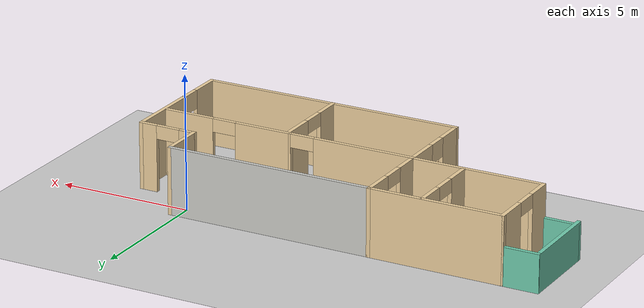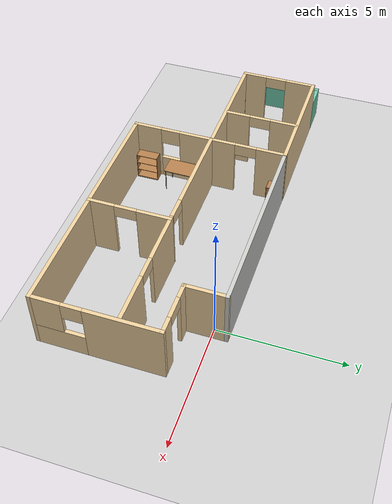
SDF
<sdf version="1.6">
 <world name="default">
  <model name="ground_plane">
   <static>1</static>
   <link name="link">
    <collision name="collision">
     <geometry><plane><normal>0 0 1</normal><size>100 100</size></plane></geometry>
     <surface>
      <contact><collide_bitmask>65535</collide_bitmask></contact>
      <friction><ode><mu>100</mu><mu2>50</mu2></ode></friction>
     </surface>
    </collision>
    <visual name="visual">
     <cast_shadows>0</cast_shadows>
     <geometry><plane><normal>0 0 1</normal><size>100 100</size></plane></geometry>
     <material>
      <script><uri>file://media/materials/scripts/gazebo.material</uri><name>Gazebo/Grey</name></script>
     </material>
    </visual>
   </link>
  </model>
  <model name="myhouse">
   <pose>-5.65027 -2.655 0 0 -0 0</pose>
   <link name="Wall_0">
    <pose>7.00027 1.625 0 0 -0 0</pose>
    <visual name="Wall_0_Visual_0">
     <pose>-0.804089 0 1.25 0 -0 0</pose>
     <geometry><box><size>0.641821 0.15 2.5</size></box></geometry>
     <material>
      <script><uri>file://media/materials/scripts/gazebo.material</uri><name>Gazebo/Grey</name></script>
      <ambient>0.921569 0.807843 0.615686 1</ambient>
     </material>
     <meta><layer>0</layer></meta>
    </visual>
    <collision name="Wall_0_Collision_0">
     <geometry><box><size>0.641821 0.15 2.5</size></box></geometry>
     <pose>-0.804089 0 1.25 0 -0 0</pose>
    </collision>
    <visual name="Wall_0_Visual_1">
     <pose>0.770911 0 1.25 0 -0 0</pose>
     <geometry><box><size>0.708179 0.15 2.5</size></box></geometry>
     <material>
      <script><uri>file://media/materials/scripts/gazebo.material</uri><name>Gazebo/Grey</name></script>
      <ambient>0.921569 0.807843 0.615686 1</ambient>
     </material>
     <meta><layer>0</layer></meta>
    </visual>
    <collision name="Wall_0_Collision_1">
     <geometry><box><size>0.708179 0.15 2.5</size></box></geometry>
     <pose>0.770911 0 1.25 0 -0 0</pose>
    </collision>
    <visual name="Wall_0_Visual_2">
     <pose>-0.033179 0 2.25 0 -0 0</pose>
     <geometry><box><size>0.9 0.15 0.5</size></box></geometry>
     <material>
      <script><uri>file://media/materials/scripts/gazebo.material</uri><name>Gazebo/Grey</name></script>
      <ambient>0.921569 0.807843 0.615686 1</ambient>
     </material>
     <meta><layer>0</layer></meta>
    </visual>
    <collision name="Wall_0_Collision_2">
     <geometry><box><size>0.9 0.15 0.5</size></box></geometry>
     <pose>-0.033179 0 2.25 0 -0 0</pose>
    </collision>
   </link>
   <link name="Wall_11">
    <pose>5.50113 0.078954 0 0 -0 3.14159</pose>
    <visual name="Wall_11_Visual_0">
     <pose>-1.5197 0 1.25 0 -0 0</pose>
     <geometry><box><size>1.9606 0.15 2.5</size></box></geometry>
     <material>
      <script><uri>file://media/materials/scripts/gazebo.material</uri><name>Gazebo/Grey</name></script>
      <ambient>0.921569 0.807843 0.615686 1</ambient>
     </material>
     <meta><layer>0</layer></meta>
    </visual>
    <collision name="Wall_11_Collision_0">
     <geometry><box><size>1.9606 0.15 2.5</size></box></geometry>
     <pose>-1.5197 0 1.25 0 -0 0</pose>
    </collision>
    <visual name="Wall_11_Visual_1">
     <pose>1.4303 0 1.25 0 -0 0</pose>
     <geometry><box><size>2.13941 0.15 2.5</size></box></geometry>
     <material>
      <script><uri>file://media/materials/scripts/gazebo.material</uri><name>Gazebo/Grey</name></script>
      <ambient>0.921569 0.807843 0.615686 1</ambient>
     </material>
     <meta><layer>0</layer></meta>
    </visual>
    <collision name="Wall_11_Collision_1">
     <geometry><box><size>2.13941 0.15 2.5</size></box></geometry>
     <pose>1.4303 0 1.25 0 -0 0</pose>
    </collision>
    <visual name="Wall_11_Visual_2">
     <pose>-0.089405 0 2.25 0 -0 0</pose>
     <geometry><box><size>0.9 0.15 0.5</size></box></geometry>
     <material>
      <script><uri>file://media/materials/scripts/gazebo.material</uri><name>Gazebo/Grey</name></script>
      <ambient>0.921569 0.807843 0.615686 1</ambient>
     </material>
     <meta><layer>0</layer></meta>
    </visual>
    <collision name="Wall_11_Collision_2">
     <geometry><box><size>0.9 0.15 0.5</size></box></geometry>
     <pose>-0.089405 0 2.25 0 -0 0</pose>
    </collision>
   </link>
   <link name="Wall_12">
    <pose>3.07613 -1.57105 0 0 -0 -1.5708</pose>
    <visual name="Wall_12_Visual_0">
     <pose>-1.01083 0 1.25 0 -0 0</pose>
     <geometry><box><size>1.42834 0.15 2.5</size></box></geometry>
     <material>
      <script><uri>file://media/materials/scripts/gazebo.material</uri><name>Gazebo/Grey</name></script>
      <ambient>0.921569 0.807843 0.615686 1</ambient>
     </material>
     <meta><layer>0</layer></meta>
    </visual>
    <collision name="Wall_12_Collision_0">
     <geometry><box><size>1.42834 0.15 2.5</size></box></geometry>
     <pose>-1.01083 0 1.25 0 -0 0</pose>
    </collision>
    <visual name="Wall_12_Visual_1">
     <pose>1.16417 0 1.25 0 -0 0</pose>
     <geometry><box><size>1.12166 0.15 2.5</size></box></geometry>
     <material>
      <script><uri>file://media/materials/scripts/gazebo.material</uri><name>Gazebo/Grey</name></script>
      <ambient>0.921569 0.807843 0.615686 1</ambient>
     </material>
     <meta><layer>0</layer></meta>
    </visual>
    <collision name="Wall_12_Collision_1">
     <geometry><box><size>1.12166 0.15 2.5</size></box></geometry>
     <pose>1.16417 0 1.25 0 -0 0</pose>
    </collision>
    <visual name="Wall_12_Visual_2">
     <pose>0.153338 0 2.25 0 -0 0</pose>
     <geometry><box><size>0.9 0.15 0.5</size></box></geometry>
     <material>
      <script><uri>file://media/materials/scripts/gazebo.material</uri><name>Gazebo/Grey</name></script>
      <ambient>0.921569 0.807843 0.615686 1</ambient>
     </material>
     <meta><layer>0</layer></meta>
    </visual>
    <collision name="Wall_12_Collision_2">
     <geometry><box><size>0.9 0.15 0.5</size></box></geometry>
     <pose>0.153338 0 2.25 0 -0 0</pose>
    </collision>
   </link>
   <link name="Wall_17">
    <pose>0.651128 0.078954 0 0 -0 3.14159</pose>
    <visual name="Wall_17_Visual_0">
     <pose>-2.3846 0 1.25 0 -0 0</pose>
     <geometry><box><size>0.230798 0.15 2.5</size></box></geometry>
     <material>
      <script><uri>file://media/materials/scripts/gazebo.material</uri><name>Gazebo/Grey</name></script>
      <ambient>0.921569 0.807843 0.615686 1</ambient>
     </material>
     <meta><layer>0</layer></meta>
    </visual>
    <collision name="Wall_17_Collision_0">
     <geometry><box><size>0.230798 0.15 2.5</size></box></geometry>
     <pose>-2.3846 0 1.25 0 -0 0</pose>
    </collision>
    <visual name="Wall_17_Visual_1">
     <pose>0.565399 0 1.25 0 -0 0</pose>
     <geometry><box><size>3.8692 0.15 2.5</size></box></geometry>
     <material>
      <script><uri>file://media/materials/scripts/gazebo.material</uri><name>Gazebo/Grey</name></script>
      <ambient>0.921569 0.807843 0.615686 1</ambient>
     </material>
     <meta><layer>0</layer></meta>
    </visual>
    <collision name="Wall_17_Collision_1">
     <geometry><box><size>3.8692 0.15 2.5</size></box></geometry>
     <pose>0.565399 0 1.25 0 -0 0</pose>
    </collision>
    <visual name="Wall_17_Visual_2">
     <pose>-1.8192 0 2.25 0 -0 0</pose>
     <geometry><box><size>0.9 0.15 0.5</size></box></geometry>
     <material>
      <script><uri>file://media/materials/scripts/gazebo.material</uri><name>Gazebo/Grey</name></script>
      <ambient>0.921569 0.807843 0.615686 1</ambient>
     </material>
     <meta><layer>0</layer></meta>
    </visual>
    <collision name="Wall_17_Collision_2">
     <geometry><box><size>0.9 0.15 0.5</size></box></geometry>
     <pose>-1.8192 0 2.25 0 -0 0</pose>
    </collision>
   </link>
   <link name="Wall_20">
    <pose>-1.79973 -1.5595 0 0 -0 1.5708</pose>
    <visual name="Wall_20_Visual_0">
     <pose>-1.13454 0 1.25 0 -0 0</pose>
     <geometry><box><size>1.21192 0.15 2.5</size></box></geometry>
     <material>
      <script><uri>file://media/materials/scripts/gazebo.material</uri><name>Gazebo/Grey</name></script>
      <ambient>0.921569 0.807843 0.615686 1</ambient>
     </material>
     <meta><layer>0</layer></meta>
    </visual>
    <collision name="Wall_20_Collision_0">
     <geometry><box><size>1.21192 0.15 2.5</size></box></geometry>
     <pose>-1.13454 0 1.25 0 -0 0</pose>
    </collision>
    <visual name="Wall_20_Visual_1">
     <pose>0.605958 0 0.5 0 -0 0</pose>
     <geometry><box><size>2.26908 0.15 1</size></box></geometry>
     <material>
      <script><uri>file://media/materials/scripts/gazebo.material</uri><name>Gazebo/Grey</name></script>
      <ambient>0.921569 0.807843 0.615686 1</ambient>
     </material>
     <meta><layer>0</layer></meta>
    </visual>
    <collision name="Wall_20_Collision_1">
     <geometry><box><size>2.26908 0.15 1</size></box></geometry>
     <pose>0.605958 0 0.5 0 -0 0</pose>
    </collision>
    <visual name="Wall_20_Visual_2">
     <pose>1.00596 0 1.75 0 -0 0</pose>
     <geometry><box><size>1.46908 0.15 1.5</size></box></geometry>
     <material>
      <script><uri>file://media/materials/scripts/gazebo.material</uri><name>Gazebo/Grey</name></script>
      <ambient>0.921569 0.807843 0.615686 1</ambient>
     </material>
     <meta><layer>0</layer></meta>
    </visual>
    <collision name="Wall_20_Collision_2">
     <geometry><box><size>1.46908 0.15 1.5</size></box></geometry>
     <pose>1.00596 0 1.75 0 -0 0</pose>
    </collision>
    <visual name="Wall_20_Visual_3">
     <pose>-0.128584 0 2.15 0 -0 0</pose>
     <geometry><box><size>0.8 0.15 0.7</size></box></geometry>
     <material>
      <script><uri>file://media/materials/scripts/gazebo.material</uri><name>Gazebo/Grey</name></script>
      <ambient>0.921569 0.807843 0.615686 1</ambient>
     </material>
     <meta><layer>0</layer></meta>
    </visual>
    <collision name="Wall_20_Collision_3">
     <geometry><box><size>0.8 0.15 0.7</size></box></geometry>
     <pose>-0.128584 0 2.15 0 -0 0</pose>
    </collision>
   </link>
   <link name="Wall_29">
    <collision name="Wall_29_Collision">
     <geometry><box><size>1.74 0.15 2.5</size></box></geometry>
     <pose>0 0 1.25 0 -0 0</pose>
    </collision>
    <visual name="Wall_29_Visual">
     <pose>0 0 1.25 0 -0 0</pose>
     <geometry><box><size>1.74 0.15 2.5</size></box></geometry>
     <material>
      <script><uri>file://media/materials/scripts/gazebo.material</uri><name>Gazebo/Grey</name></script>
      <ambient>0.921569 0.807843 0.615686 1</ambient>
     </material>
     <meta><layer>0</layer></meta>
    </visual>
    <pose>5.95027 2.42 0 0 -0 1.5708</pose>
   </link>
   <link name="Wall_30">
    <collision name="Wall_30_Collision">
     <geometry><box><size>7.75 0.15 2.5</size></box></geometry>
     <pose>0 0 1.25 0 -0 0</pose>
    </collision>
    <visual name="Wall_30_Visual">
     <pose>0 0 1.25 0 -0 0</pose>
     <geometry><box><size>7.75 0.15 2.5</size></box></geometry>
     <material>
      <script><uri>file://media/materials/scripts/gazebo.material</uri><name>Gazebo/CeilingTiled</name></script>
      <ambient>0.921569 0.807843 0.615686 1</ambient>
     </material>
     <meta><layer>0</layer></meta>
    </visual>
    <pose>2.15027 3.215 0 0 -0 3.14159</pose>
   </link>
   <link name="Wall_32">
    <pose>-1.79973 1.6655 0 0 -0 1.5708</pose>
    <visual name="Wall_32_Visual_0">
     <pose>-1.09237 0 1.25 0 -0 0</pose>
     <geometry><box><size>1.08427 0.15 2.5</size></box></geometry>
     <material>
      <script><uri>file://media/materials/scripts/gazebo.material</uri><name>Gazebo/Grey</name></script>
      <ambient>0.921569 0.807843 0.615686 1</ambient>
     </material>
     <meta><layer>0</layer></meta>
    </visual>
    <collision name="Wall_32_Collision_0">
     <geometry><box><size>1.08427 0.15 2.5</size></box></geometry>
     <pose>-1.09237 0 1.25 0 -0 0</pose>
    </collision>
    <visual name="Wall_32_Visual_1">
     <pose>0.992134 0 1.25 0 -0 0</pose>
     <geometry><box><size>1.28473 0.15 2.5</size></box></geometry>
     <material>
      <script><uri>file://media/materials/scripts/gazebo.material</uri><name>Gazebo/Grey</name></script>
      <ambient>0.921569 0.807843 0.615686 1</ambient>
     </material>
     <meta><layer>0</layer></meta>
    </visual>
    <collision name="Wall_32_Collision_1">
     <geometry><box><size>1.28473 0.15 2.5</size></box></geometry>
     <pose>0.992134 0 1.25 0 -0 0</pose>
    </collision>
    <visual name="Wall_32_Visual_2">
     <pose>-0.100233 0 2.25 0 -0 0</pose>
     <geometry><box><size>0.9 0.15 0.5</size></box></geometry>
     <material>
      <script><uri>file://media/materials/scripts/gazebo.material</uri><name>Gazebo/Grey</name></script>
      <ambient>0.921569 0.807843 0.615686 1</ambient>
     </material>
     <meta><layer>0</layer></meta>
    </visual>
    <collision name="Wall_32_Collision_2">
     <geometry><box><size>0.9 0.15 0.5</size></box></geometry>
     <pose>-0.100233 0 2.25 0 -0 0</pose>
    </collision>
   </link>
   <link name="Wall_37">
    <collision name="Wall_37_Collision">
     <geometry><box><size>5.1 0.15 2.5</size></box></geometry>
     <pose>0 0 1.25 0 -0 0</pose>
    </collision>
    <visual name="Wall_37_Visual">
     <pose>0 0 1.25 0 -0 0</pose>
     <geometry><box><size>5.1 0.15 2.5</size></box></geometry>
     <material>
      <script><uri>file://media/materials/scripts/gazebo.material</uri><name>Gazebo/Grey</name></script>
      <ambient>0.921569 0.807843 0.615686 1</ambient>
     </material>
     <meta><layer>0</layer></meta>
    </visual>
    <pose>-4.27473 3.225 0 0 -0 3.14159</pose>
   </link>
   <link name="Wall_51">
    <pose>-3.76973 1.695 0 0 -0 -1.5708</pose>
    <visual name="Wall_51_Visual_0">
     <pose>-0.966083 0 1.25 0 -0 0</pose>
     <geometry><box><size>1.16783 0.15 2.5</size></box></geometry>
     <material>
      <script><uri>file://media/materials/scripts/gazebo.material</uri><name>Gazebo/Grey</name></script>
      <ambient>0.921569 0.807843 0.615686 1</ambient>
     </material>
     <meta><layer>0</layer></meta>
    </visual>
    <collision name="Wall_51_Collision_0">
     <geometry><box><size>1.16783 0.15 2.5</size></box></geometry>
     <pose>-0.966083 0 1.25 0 -0 0</pose>
    </collision>
    <visual name="Wall_51_Visual_1">
     <pose>1.03392 0 1.25 0 -0 0</pose>
     <geometry><box><size>1.03217 0.15 2.5</size></box></geometry>
     <material>
      <script><uri>file://media/materials/scripts/gazebo.material</uri><name>Gazebo/Grey</name></script>
      <ambient>0.921569 0.807843 0.615686 1</ambient>
     </material>
     <meta><layer>0</layer></meta>
    </visual>
    <collision name="Wall_51_Collision_1">
     <geometry><box><size>1.03217 0.15 2.5</size></box></geometry>
     <pose>1.03392 0 1.25 0 -0 0</pose>
    </collision>
    <visual name="Wall_51_Visual_2">
     <pose>0.067833 0 2.25 0 -0 0</pose>
     <geometry><box><size>0.9 0.15 0.5</size></box></geometry>
     <material>
      <script><uri>file://media/materials/scripts/gazebo.material</uri><name>Gazebo/Grey</name></script>
      <ambient>0.921569 0.807843 0.615686 1</ambient>
     </material>
     <meta><layer>0</layer></meta>
    </visual>
    <collision name="Wall_51_Collision_2">
     <geometry><box><size>0.9 0.15 0.5</size></box></geometry>
     <pose>0.067833 0 2.25 0 -0 0</pose>
    </collision>
   </link>
   <link name="Wall_55">
    <pose>-6.73773 1.6725 0 0 -0 -1.5708</pose>
    <visual name="Wall_55_Visual_0">
     <pose>-0.974197 0 1.25 0 -0 0</pose>
     <geometry><box><size>1.30661 0.15 2.5</size></box></geometry>
     <material>
      <script><uri>file://media/materials/scripts/gazebo.material</uri><name>Gazebo/Grey</name></script>
      <ambient>0.921569 0.807843 0.615686 1</ambient>
     </material>
     <meta><layer>0</layer></meta>
    </visual>
    <collision name="Wall_55_Collision_0">
     <geometry><box><size>1.30661 0.15 2.5</size></box></geometry>
     <pose>-0.974197 0 1.25 0 -0 0</pose>
    </collision>
    <visual name="Wall_55_Visual_1">
     <pose>1.1033 0 1.25 0 -0 0</pose>
     <geometry><box><size>1.04839 0.15 2.5</size></box></geometry>
     <material>
      <script><uri>file://media/materials/scripts/gazebo.material</uri><name>Gazebo/Grey</name></script>
      <ambient>0.921569 0.807843 0.615686 1</ambient>
     </material>
     <meta><layer>0</layer></meta>
    </visual>
    <collision name="Wall_55_Collision_1">
     <geometry><box><size>1.04839 0.15 2.5</size></box></geometry>
     <pose>1.1033 0 1.25 0 -0 0</pose>
    </collision>
    <visual name="Wall_55_Visual_2">
     <pose>0.129106 0 2.25 0 -0 0</pose>
     <geometry><box><size>0.9 0.15 0.5</size></box></geometry>
     <material>
      <script><uri>file://media/materials/scripts/gazebo.material</uri><name>Gazebo/Grey</name></script>
      <ambient>0.921569 0.807843 0.615686 1</ambient>
     </material>
     <meta><layer>0</layer></meta>
    </visual>
    <collision name="Wall_55_Collision_2">
     <geometry><box><size>0.9 0.15 0.5</size></box></geometry>
     <pose>0.129106 0 2.25 0 -0 0</pose>
    </collision>
   </link>
   <link name="Wall_6">
    <pose>8.05027 -0.8 0 0 -0 -1.5708</pose>
    <visual name="Wall_6_Visual_0">
     <pose>-1.02355 0 1.25 0 -0 0</pose>
     <geometry><box><size>2.95291 0.15 2.5</size></box></geometry>
     <material>
      <script><uri>file://media/materials/scripts/gazebo.material</uri><name>Gazebo/Grey</name></script>
      <ambient>0.921569 0.807843 0.615686 1</ambient>
     </material>
     <meta><layer>0</layer></meta>
    </visual>
    <collision name="Wall_6_Collision_0">
     <geometry><box><size>2.95291 0.15 2.5</size></box></geometry>
     <pose>-1.02355 0 1.25 0 -0 0</pose>
    </collision>
    <visual name="Wall_6_Visual_1">
     <pose>1.47645 0 0.5 0 -0 0</pose>
     <geometry><box><size>2.04709 0.15 1</size></box></geometry>
     <material>
      <script><uri>file://media/materials/scripts/gazebo.material</uri><name>Gazebo/Grey</name></script>
      <ambient>0.921569 0.807843 0.615686 1</ambient>
     </material>
     <meta><layer>0</layer></meta>
    </visual>
    <collision name="Wall_6_Collision_1">
     <geometry><box><size>2.04709 0.15 1</size></box></geometry>
     <pose>1.47645 0 0.5 0 -0 0</pose>
    </collision>
    <visual name="Wall_6_Visual_2">
     <pose>1.87645 0 1.75 0 -0 0</pose>
     <geometry><box><size>1.24709 0.15 1.5</size></box></geometry>
     <material>
      <script><uri>file://media/materials/scripts/gazebo.material</uri><name>Gazebo/Grey</name></script>
      <ambient>0.921569 0.807843 0.615686 1</ambient>
     </material>
     <meta><layer>0</layer></meta>
    </visual>
    <collision name="Wall_6_Collision_2">
     <geometry><box><size>1.24709 0.15 1.5</size></box></geometry>
     <pose>1.87645 0 1.75 0 -0 0</pose>
    </collision>
    <visual name="Wall_6_Visual_3">
     <pose>0.852906 0 2.15 0 -0 0</pose>
     <geometry><box><size>0.8 0.15 0.7</size></box></geometry>
     <material>
      <script><uri>file://media/materials/scripts/gazebo.material</uri><name>Gazebo/Grey</name></script>
      <ambient>0.921569 0.807843 0.615686 1</ambient>
     </material>
     <meta><layer>0</layer></meta>
    </visual>
    <collision name="Wall_6_Collision_3">
     <geometry><box><size>0.8 0.15 0.7</size></box></geometry>
     <pose>0.852906 0 2.15 0 -0 0</pose>
    </collision>
   </link>
   <link name="Wall_66">
    <collision name="Wall_66_Collision">
     <geometry><box><size>5.07 0.15 2.5</size></box></geometry>
     <pose>0 0 1.25 0 -0 0</pose>
    </collision>
    <visual name="Wall_66_Visual">
     <pose>0 0 1.25 0 -0 0</pose>
     <geometry><box><size>5.07 0.15 2.5</size></box></geometry>
     <material>
      <script><uri>file://media/materials/scripts/gazebo.material</uri><name>Gazebo/Grey</name></script>
      <ambient>0.921569 0.807843 0.615686 1</ambient>
     </material>
     <meta><layer>0</layer></meta>
    </visual>
    <pose>-4.25973 0.106 0 0 -0 3.14159</pose>
   </link>
   <link name="Wall_69">
    <collision name="Wall_69_Collision">
     <geometry><box><size>1.48098 0.15 1.3</size></box></geometry>
     <pose>0 0 0.65 0 -0 0</pose>
    </collision>
    <visual name="Wall_69_Visual">
     <pose>0 0 0.65 0 -0 0</pose>
     <geometry><box><size>1.48098 0.15 1.3</size></box></geometry>
     <material>
      <script><uri>file://media/materials/scripts/gazebo.material</uri><name>Gazebo/Grey</name></script>
      <ambient>0.435294 0.796078 0.67451 1</ambient>
     </material>
     <meta><layer>0</layer></meta>
    </visual>
    <pose>-7.38473 0.1055 0 0 -0 -3.14084</pose>
   </link>
   <link name="Wall_70">
    <collision name="Wall_70_Collision">
     <geometry><box><size>3.25 0.15 1.4</size></box></geometry>
     <pose>0 0 0.7 0 -0 0</pose>
    </collision>
    <visual name="Wall_70_Visual">
     <pose>0 0 0.7 0 -0 0</pose>
     <geometry><box><size>3.25 0.15 1.4</size></box></geometry>
     <material>
      <script><uri>file://media/materials/scripts/gazebo.material</uri><name>Gazebo/Grey</name></script>
      <ambient>0.435294 0.796078 0.67451 1</ambient>
     </material>
     <meta><layer>0</layer></meta>
    </visual>
    <pose>-8.04973 1.655 0 0 -0 1.5708</pose>
   </link>
   <link name="Wall_74">
    <collision name="Wall_74_Collision">
     <geometry><box><size>1.46 0.15 1.4</size></box></geometry>
     <pose>0 0 0.7 0 -0 0</pose>
    </collision>
    <visual name="Wall_74_Visual">
     <pose>0 0 0.7 0 -0 0</pose>
     <geometry><box><size>1.46 0.15 1.4</size></box></geometry>
     <material>
      <script><uri>file://media/materials/scripts/gazebo.material</uri><name>Gazebo/Grey</name></script>
      <ambient>0.435294 0.796078 0.67451 1</ambient>
     </material>
     <meta><layer>0</layer></meta>
    </visual>
    <pose>-7.39273 3.225 0 0 -0 3.14159</pose>
   </link>
   <link name="Wall_9">
    <collision name="Wall_9_Collision">
     <geometry><box><size>10 0.15 2.5</size></box></geometry>
     <pose>0 0 1.25 0 -0 0</pose>
    </collision>
    <visual name="Wall_9_Visual">
     <pose>0 0 1.25 0 -0 0</pose>
     <geometry><box><size>10 0.15 2.5</size></box></geometry>
     <material>
      <script><uri>file://media/materials/scripts/gazebo.material</uri><name>Gazebo/Grey</name></script>
      <ambient>0.921569 0.807843 0.615686 1</ambient>
     </material>
     <meta><layer>0</layer></meta>
    </visual>
    <pose>3.12527 -3.225 0 0 -0 3.14159</pose>
   </link>
   <static>1</static>
  </model>
  <model name="bookshelf_clone">
   <static>1</static>
   <link name="link">
    <inertial><mass>1</mass></inertial>
    <collision name="back">
     <pose>0 0.005 0.6 0 -0 0</pose>
     <geometry><box><size>0.9 0.01 1.2</size></box></geometry>
    </collision>
    <visual name="visual1">
     <pose>0 0.005 0.6 0 -0 0</pose>
     <geometry><box><size>0.9 0.01 1.2</size></box></geometry>
     <material>
      <script><uri>file://media/materials/scripts/gazebo.material</uri><name>Gazebo/Wood</name></script>
     </material>
    </visual>
    <collision name="left_side">
     <pose>0.45 -0.195 0.6 0 -0 0</pose>
     <geometry><box><size>0.02 0.4 1.2</size></box></geometry>
    </collision>
    <visual name="visual2">
     <pose>0.45 -0.195 0.6 0 -0 0</pose>
     <geometry><box><size>0.02 0.4 1.2</size></box></geometry>
     <material>
      <script><uri>file://media/materials/scripts/gazebo.material</uri><name>Gazebo/Wood</name></script>
     </material>
    </visual>
    <collision name="right_side">
     <pose>-0.45 -0.195 0.6 0 -0 0</pose>
     <geometry><box><size>0.02 0.4 1.2</size></box></geometry>
    </collision>
    <visual name="visual3">
     <pose>-0.45 -0.195 0.6 0 -0 0</pose>
     <geometry><box><size>0.02 0.4 1.2</size></box></geometry>
     <material>
      <script><uri>file://media/materials/scripts/gazebo.material</uri><name>Gazebo/Wood</name></script>
     </material>
    </visual>
    <collision name="bottom">
     <pose>0 -0.195 0.03 0 -0 0</pose>
     <geometry><box><size>0.88 0.4 0.06</size></box></geometry>
    </collision>
    <visual name="visual4">
     <pose>0 -0.195 0.03 0 -0 0</pose>
     <geometry><box><size>0.88 0.4 0.06</size></box></geometry>
     <material>
      <script><uri>file://media/materials/scripts/gazebo.material</uri><name>Gazebo/Wood</name></script>
     </material>
    </visual>
    <collision name="top">
     <pose>0 -0.195 1.19 0 -0 0</pose>
     <geometry><box><size>0.88 0.4 0.02</size></box></geometry>
    </collision>
    <visual name="visual5">
     <pose>0 -0.195 1.19 0 -0 0</pose>
     <geometry><box><size>0.88 0.4 0.02</size></box></geometry>
     <material>
      <script><uri>file://media/materials/scripts/gazebo.material</uri><name>Gazebo/Wood</name></script>
     </material>
    </visual>
    <collision name="low_shelf">
     <pose>0 -0.195 0.43 0 -0 0</pose>
     <geometry><box><size>0.88 0.4 0.02</size></box></geometry>
    </collision>
    <visual name="visual6">
     <pose>0 -0.195 0.43 0 -0 0</pose>
     <geometry><box><size>0.88 0.4 0.02</size></box></geometry>
     <material>
      <script><uri>file://media/materials/scripts/gazebo.material</uri><name>Gazebo/Wood</name></script>
     </material>
    </visual>
    <collision name="high_shelf">
     <pose>0 -0.195 0.8 0 -0 0</pose>
     <geometry><box><size>0.88 0.4 0.02</size></box></geometry>
    </collision>
    <visual name="visual7">
     <pose>0 -0.195 0.8 0 -0 0</pose>
     <geometry><box><size>0.88 0.4 0.02</size></box></geometry>
     <material>
      <script><uri>file://media/materials/scripts/gazebo.material</uri><name>Gazebo/Wood</name></script>
     </material>
    </visual>
   </link>
   <pose>-7.32022 -5.29409 0 0 -0 1.58021</pose>
  </model>
  <model name="table">
   <static>1</static>
   <link name="link">
    <collision name="surface">
     <pose>0 0 1 0 -0 0</pose>
     <geometry><box><size>1.5 0.8 0.03</size></box></geometry>
     <surface><friction><ode><mu>0.6</mu><mu2>0.6</mu2></ode></friction></surface>
    </collision>
    <visual name="visual1">
     <pose>0 0 1 0 -0 0</pose>
     <geometry><box><size>1.5 0.8 0.03</size></box></geometry>
     <material>
      <script><uri>file://media/materials/scripts/gazebo.material</uri><name>Gazebo/Wood</name></script>
     </material>
    </visual>
    <collision name="front_left_leg">
     <pose>0.68 0.38 0.5 0 -0 0</pose>
     <geometry><cylinder><radius>0.02</radius><length>1</length></cylinder></geometry>
    </collision>
    <visual name="front_left_leg">
     <pose>0.68 0.38 0.5 0 -0 0</pose>
     <geometry><cylinder><radius>0.02</radius><length>1</length></cylinder></geometry>
     <material>
      <script><uri>file://media/materials/scripts/gazebo.material</uri><name>Gazebo/Grey</name></script>
     </material>
    </visual>
    <collision name="front_right_leg">
     <pose>0.68 -0.38 0.5 0 -0 0</pose>
     <geometry><cylinder><radius>0.02</radius><length>1</length></cylinder></geometry>
    </collision>
    <visual name="front_right_leg">
     <pose>0.68 -0.38 0.5 0 -0 0</pose>
     <geometry><cylinder><radius>0.02</radius><length>1</length></cylinder></geometry>
     <material>
      <script><uri>file://media/materials/scripts/gazebo.material</uri><name>Gazebo/Grey</name></script>
     </material>
    </visual>
    <collision name="back_right_leg">
     <pose>-0.68 -0.38 0.5 0 -0 0</pose>
     <geometry><cylinder><radius>0.02</radius><length>1</length></cylinder></geometry>
    </collision>
    <visual name="back_right_leg">
     <pose>-0.68 -0.38 0.5 0 -0 0</pose>
     <geometry><cylinder><radius>0.02</radius><length>1</length></cylinder></geometry>
     <material>
      <script><uri>file://media/materials/scripts/gazebo.material</uri><name>Gazebo/Grey</name></script>
     </material>
    </visual>
    <collision name="back_left_leg">
     <pose>-0.68 0.38 0.5 0 -0 0</pose>
     <geometry><cylinder><radius>0.02</radius><length>1</length></cylinder></geometry>
    </collision>
    <visual name="back_left_leg">
     <pose>-0.68 0.38 0.5 0 -0 0</pose>
     <geometry><cylinder><radius>0.02</radius><length>1</length></cylinder></geometry>
     <material>
      <script><uri>file://media/materials/scripts/gazebo.material</uri><name>Gazebo/Grey</name></script>
     </material>
    </visual>
   </link>
   <pose>-6.94237 -3.61851 0 0 -0 1.56455</pose>
  </model>
  <model name="cabinet">
   <static>1</static>
   <link name="cabinet_bottom_plate">
    <inertial>
     <pose>0 0 -1 0 -0 0</pose>
     <inertia><ixx>2.05</ixx><ixy>0</ixy><ixz>0</ixz><iyy>2.05</iyy><iyz>0</iyz><izz>2.05</izz></inertia>
     <mass>25</mass>
    </inertial>
    <collision name="cabinet_bottom_plate_geom">
     <pose>0 0 0.01 0 -0 0</pose>
     <geometry><box><size>0.45 0.45 0.02</size></box></geometry>
    </collision>
    <visual name="cabinet_bottom_plate_geom_visual">
     <pose>0 0 0.01 0 -0 0</pose>
     <geometry><box><size>0.45 0.45 0.02</size></box></geometry>
     <material>
      <script><uri>file://media/materials/scripts/gazebo.material</uri><name>Gazebo/Wood</name></script>
     </material>
    </visual>
    <collision name="cabinet_bottom_plate_geom_cabinet_back_plate">
     <pose>0.235 0 0.51 0 -0 0</pose>
     <geometry><box><size>0.02 0.45 1.02</size></box></geometry>
    </collision>
    <visual name="cabinet_bottom_plate_geom_cabinet_back_plate_visual">
     <pose>0.235 0 0.51 0 -0 0</pose>
     <geometry><box><size>0.02 0.45 1.02</size></box></geometry>
     <material>
      <script><uri>file://media/materials/scripts/gazebo.material</uri><name>Gazebo/Wood</name></script>
     </material>
    </visual>
    <collision name="cabinet_bottom_plate_geom_cabinet_left_plate">
     <pose>0 0.235 0.51 0 -0 0</pose>
     <geometry><box><size>0.45 0.02 1.02</size></box></geometry>
    </collision>
    <visual name="cabinet_bottom_plate_geom_cabinet_left_plate_visual">
     <pose>0 0.235 0.51 0 -0 0</pose>
     <geometry><box><size>0.45 0.02 1.02</size></box></geometry>
     <material>
      <script><uri>file://media/materials/scripts/gazebo.material</uri><name>Gazebo/Wood</name></script>
     </material>
    </visual>
    <collision name="cabinet_bottom_plate_geom_cabinet_middle_plate">
     <pose>0 0 0.51 0 -0 0</pose>
     <geometry><box><size>0.45 0.45 0.02</size></box></geometry>
    </collision>
    <visual name="cabinet_bottom_plate_geom_cabinet_middle_plate_visual">
     <pose>0 0 0.51 0 -0 0</pose>
     <geometry><box><size>0.45 0.45 0.02</size></box></geometry>
     <material>
      <script><uri>file://media/materials/scripts/gazebo.material</uri><name>Gazebo/Wood</name></script>
     </material>
    </visual>
    <collision name="cabinet_bottom_plate_geom_cabinet_right_plate">
     <pose>0 -0.235 0.51 0 -0 0</pose>
     <geometry><box><size>0.45 0.02 1.02</size></box></geometry>
    </collision>
    <visual name="cabinet_bottom_plate_geom_cabinet_right_plate_visual">
     <pose>0 -0.235 0.51 0 -0 0</pose>
     <geometry><box><size>0.45 0.02 1.02</size></box></geometry>
     <material>
      <script><uri>file://media/materials/scripts/gazebo.material</uri><name>Gazebo/Wood</name></script>
     </material>
    </visual>
    <collision name="cabinet_bottom_plate_geom_cabinet_top_plate">
     <pose>0 0 1.01 0 -0 0</pose>
     <geometry><box><size>0.45 0.45 0.02</size></box></geometry>
    </collision>
    <visual name="cabinet_bottom_plate_geom_cabinet_top_plate_visual">
     <pose>0 0 1.01 0 -0 0</pose>
     <geometry><box><size>0.45 0.45 0.02</size></box></geometry>
     <material>
      <script><uri>file://media/materials/scripts/gazebo.material</uri><name>Gazebo/Wood</name></script>
     </material>
    </visual>
   </link>
   <pose>-7.1309 0.236862 0 0 -0 0</pose>
  </model>
 </world>
</sdf>
